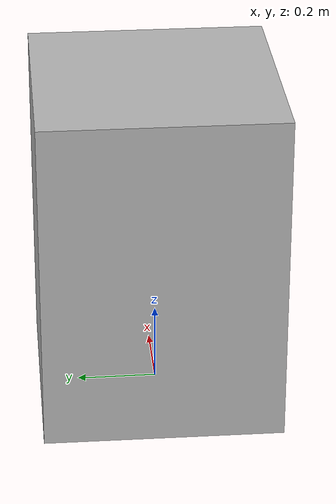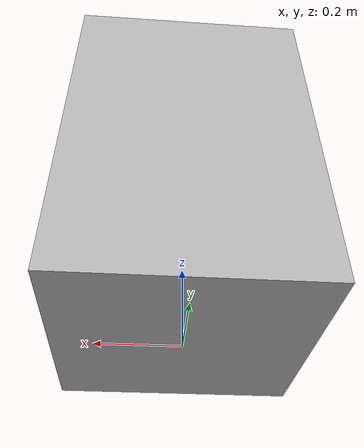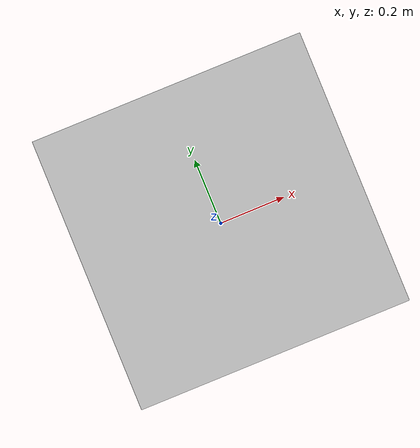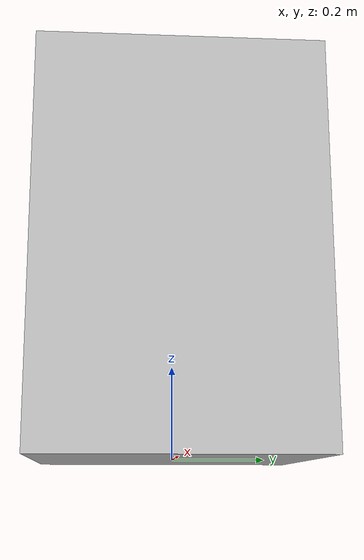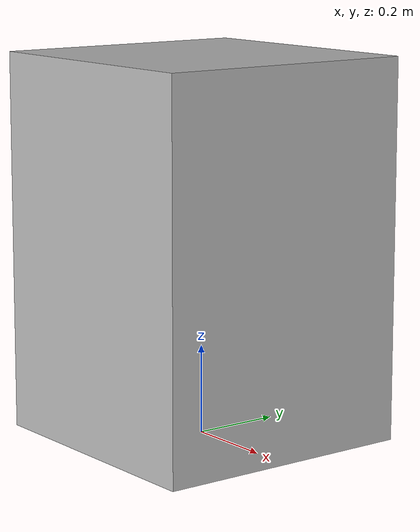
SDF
<?xml version="1.0"?>
<sdf version="1.6">
  <model name="rgo2019/dishwasher">
    <link name="1_link">
      <collision name="1_col">
        <geometry>
          <box>
            <size>0.6 0.6 0.85</size>
          </box>
        </geometry>
      </collision>
      <visual name="1_vis">
        <geometry>
          <box>
            <size>0.6 0.6 0.85</size>
          </box>
        </geometry>
      </visual>
      <pose>0.0 0.0 0.425 0 0 0</pose>
    </link>
    <link name="on_top_of">
      <virtual_volume name="on_top_of_vv">
        <geometry>
          <box>
            <size>0.58 0.54 0.25</size>
          </box>
        </geometry>
        <pose>0.0 0.0 0.995 0 0 0</pose>
      </virtual_volume>
    </link>
    <link name="in_front_of">
      <virtual_volume name="in_front_of_vv">
        <geometry>
          <box>
            <size>0.2 0.4 0.01</size>
          </box>
        </geometry>
        <pose>0.8 0.0 0.005 0 0 0</pose>
      </virtual_volume>
    </link>
    <static>true</static>
  </model>
</sdf>
